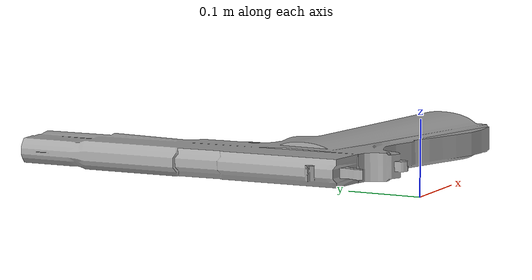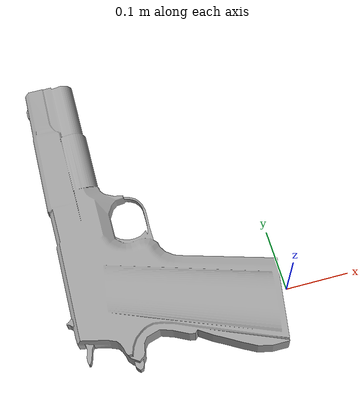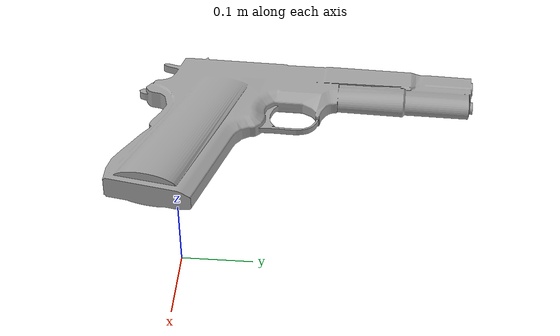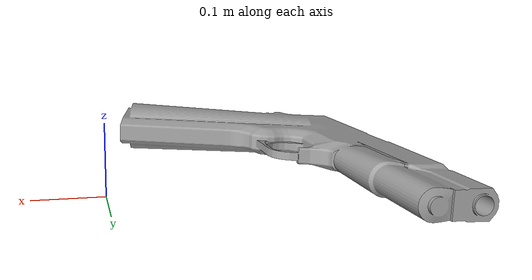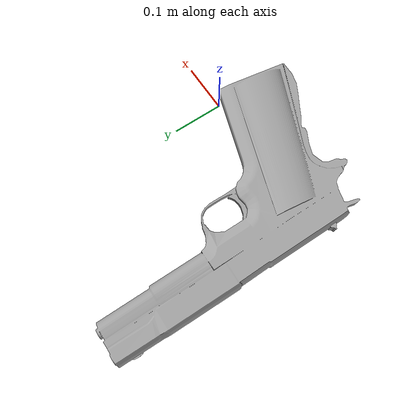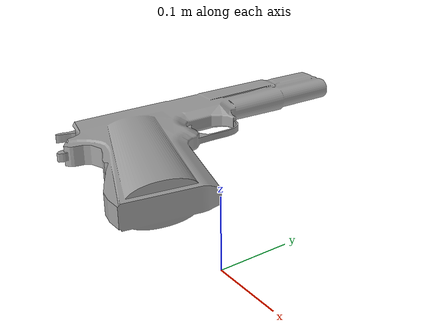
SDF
<?xml version="1.0" ?>
<sdf version="1.5">
  <model name="gun">
    <link name="link">
      <visual name="visual">
        <pose>0 0 0.02 0 0 1.57</pose>
        <geometry>
          <mesh>
            <uri>model://gun/meshes/colt1911.dae</uri>
            <scale>0.2 0.2 0.2 </scale>
          </mesh>
        </geometry>
      </visual>
    </link>
  </model>
</sdf>
